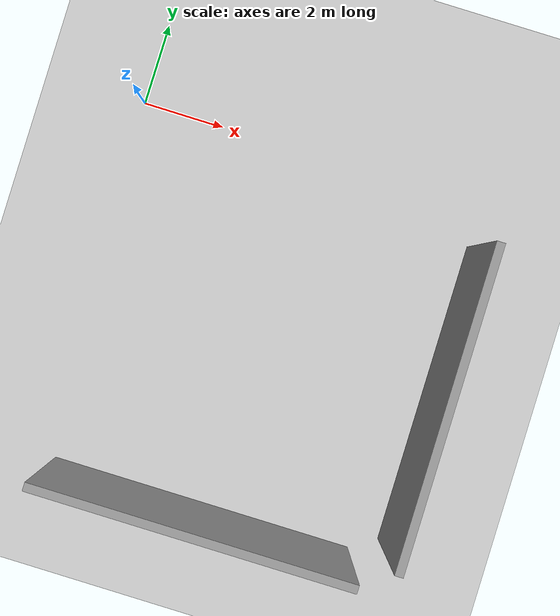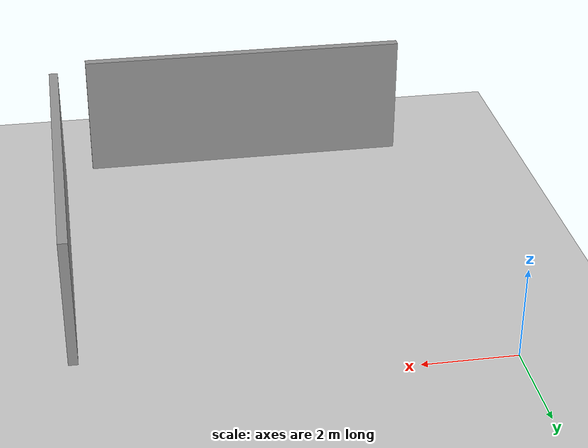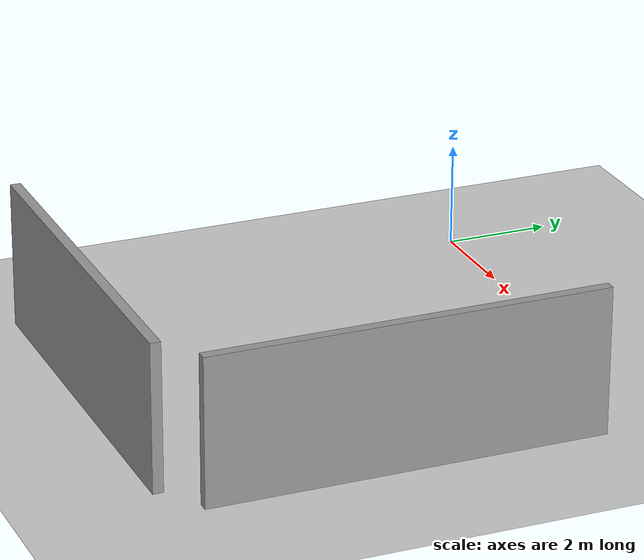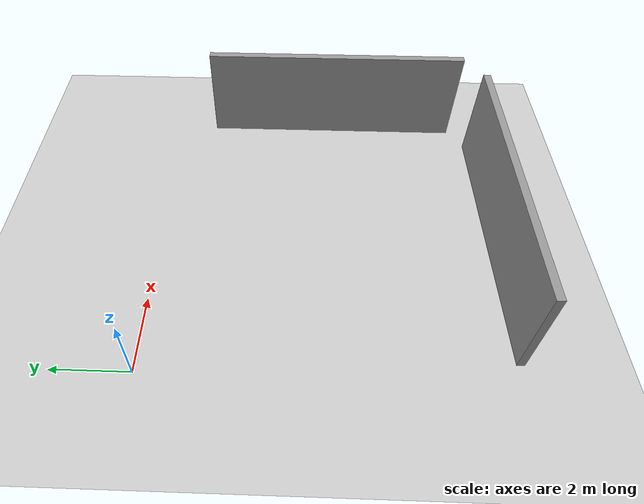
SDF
<sdf version="1.6">
 <world name="default">
  <light name="sun" type="directional">
   <pose>0 0 10 0 -0 0</pose>
   <diffuse>0.8 0.8 0.8 1</diffuse>
   <specular>0.2 0.2 0.2 1</specular>
   <attenuation>
    <range>1000</range>
    <constant>0.9</constant>
    <linear>0.01</linear>
    <quadratic>0.001</quadratic>
   </attenuation>
   <direction>-0.5 0.1 -0.9</direction>
  </light>
  <model name="ground_plane">
   <static>1</static>
   <link name="ground_plane::link">
    <collision name="collision">
     <geometry><plane><normal>0 0 1</normal><size>100 100</size></plane></geometry>
     <surface><friction><ode><mu>100</mu><mu2>50</mu2></ode></friction></surface>
    </collision>
    <visual name="visual">
     <cast_shadows>0</cast_shadows>
     <geometry><plane><normal>0 0 1</normal><size>100 100</size></plane></geometry>
     <material>
      <script><uri>file://media/materials/scripts/gazebo.material</uri><name>Gazebo/Grey</name></script>
     </material>
    </visual>
    <velocity_decay><linear>0</linear><angular>0</angular></velocity_decay>
    <gravity>0</gravity>
   </link>
  </model>
  <physics name="default_physics" default="0" type="ode">
   <max_step_size>0.001</max_step_size>
   <real_time_factor>1</real_time_factor>
   <real_time_update_rate>1000</real_time_update_rate>
  </physics>
  <scene><ambient>0.4 0.4 0.4 1</ambient><background>0.7 0.7 0.7 1</background><shadows>1</shadows></scene>
  <spherical_coordinates>
   <surface_model>EARTH_WGS84</surface_model>
   <latitude_deg>0</latitude_deg>
   <longitude_deg>0</longitude_deg>
   <elevation>0</elevation>
   <heading_deg>0</heading_deg>
  </spherical_coordinates>
  <model name="grey_wall_3">
   <static>1</static>
   <link name="link">
    <pose>0 0 1.4 0 -0 0</pose>
    <collision name="collision"><geometry><box><size>7.5 0.2 2.8</size></box></geometry></collision>
    <visual name="visual">
     <cast_shadows>0</cast_shadows>
     <geometry><box><size>7.5 0.2 2.8</size></box></geometry>
     <material>
      <script>
       <uri>model://grey_wall/materials/scripts</uri>
       <uri>model://grey_wall/materials/textures</uri>
       <name>vrc/grey_wall</name>
      </script>
     </material>
    </visual>
    <velocity_decay><linear>0</linear><angular>0</angular></velocity_decay>
   </link>
   <pose>8.71599 -4.79783 0.00212 0 0 -1.57102</pose>
  </model>
  <model name="grey_wall_4">
   <static>1</static>
   <link name="link">
    <pose>0 0 1.4 0 -0 0</pose>
    <collision name="collision"><geometry><box><size>7.5 0.2 2.8</size></box></geometry></collision>
    <visual name="visual">
     <cast_shadows>0</cast_shadows>
     <geometry><box><size>7.5 0.2 2.8</size></box></geometry>
     <material>
      <script>
       <uri>model://grey_wall/materials/scripts</uri>
       <uri>model://grey_wall/materials/textures</uri>
       <name>vrc/grey_wall</name>
      </script>
     </material>
    </visual>
    <velocity_decay><linear>0</linear><angular>0</angular></velocity_decay>
   </link>
   <pose>4.21526 -9.06829 0 0 -0 0</pose>
  </model>
  <gravity>0 0 -9.8</gravity>
  <magnetic_field>6e-06 2.3e-05 -4.2e-05</magnetic_field>
  <atmosphere type="adiabatic"/>
 </world>
</sdf>
